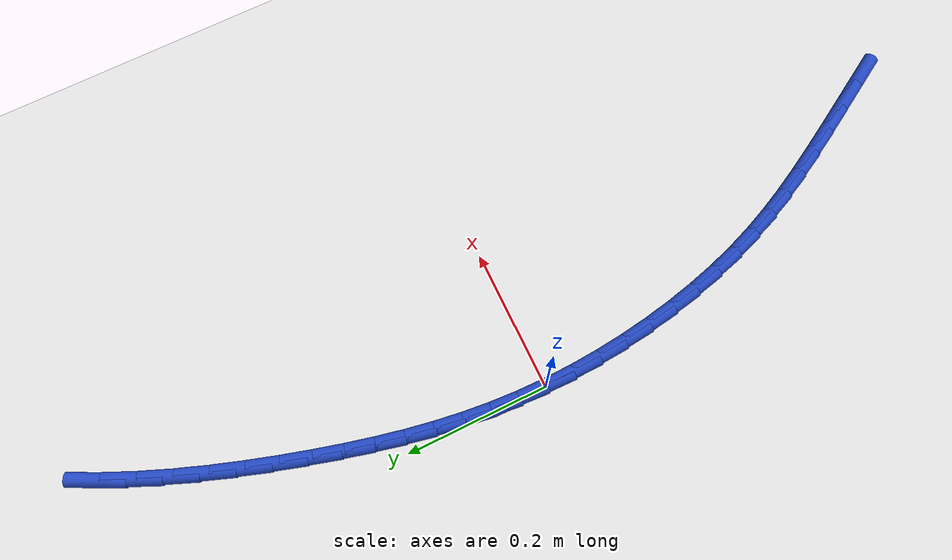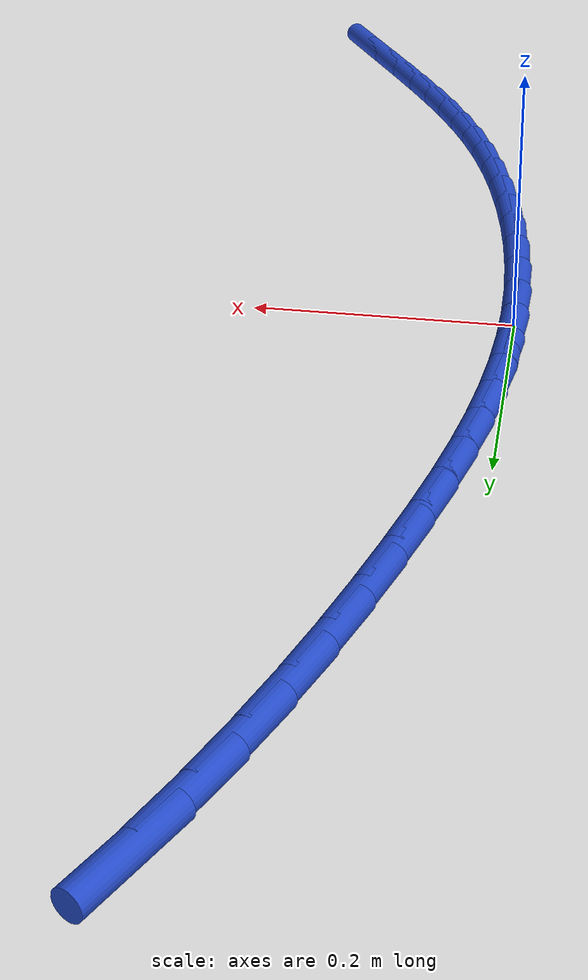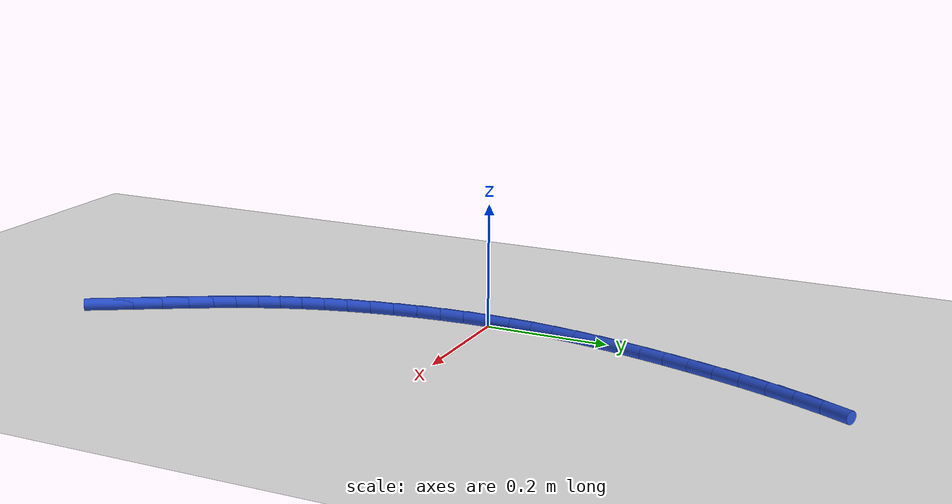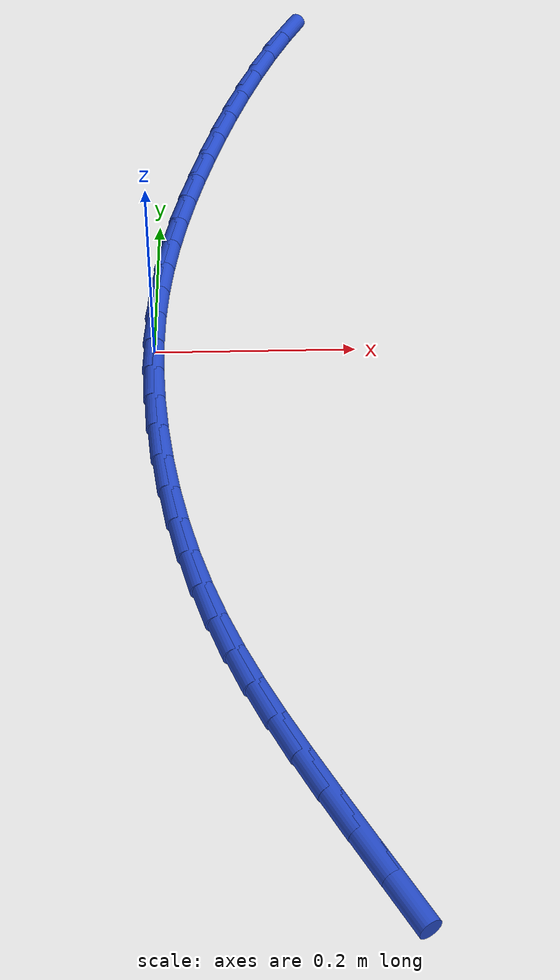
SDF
<sdf version="1.6">
 <world name="default">
  <model name="ground_plane">
   <static>1</static>
   <link name="link">
    <collision name="collision">
     <geometry><plane><normal>0 0 1</normal><size>100 100</size></plane></geometry>
     <surface><friction><ode><mu>100</mu><mu2>50</mu2></ode></friction></surface>
    </collision>
    <visual name="visual">
     <cast_shadows>0</cast_shadows>
     <geometry><plane><normal>0 0 1</normal><size>100 100</size></plane></geometry>
     <material>
      <script><uri>file://media/materials/scripts/gazebo.material</uri><name>Gazebo/WhiteGlow</name></script>
     </material>
    </visual>
   </link>
  </model>
  <model name="line">
   <link name="link_0">
    <pose>2.5153490401663703e-17 1.3877787807814457e-17 0.01 0 1.57 1.5471505784857835</pose>
    <collision name="collision">
     <geometry><cylinder><radius>0.01</radius><length>0.08</length></cylinder></geometry>
    </collision>
    <visual name="visual">
     <material>
      <script><name>Gazebo/Blue</name><uri>file://media/materials/scripts/gazebo.material</uri></script>
     </material>
     <geometry><cylinder><radius>0.01</radius><length>0.08</length></cylinder></geometry>
    </visual>
   </link>
   <link name="link_1">
    <pose>0.000923275118051304 0.03903885913328949 0.01 0 1.57 1.5042444246190936</pose>
    <collision name="collision">
     <geometry><cylinder><radius>0.01</radius><length>0.08</length></cylinder></geometry>
    </collision>
    <visual name="visual">
     <material>
      <script><name>Gazebo/Blue</name><uri>file://media/materials/scripts/gazebo.material</uri></script>
     </material>
     <geometry><cylinder><radius>0.01</radius><length>0.08</length></cylinder></geometry>
    </visual>
   </link>
   <link name="link_2">
    <pose>0.0034914588525333636 0.07757105584085955 0.01 0 1.57 1.4627454740002928</pose>
    <collision name="collision">
     <geometry><cylinder><radius>0.01</radius><length>0.08</length></cylinder></geometry>
    </collision>
    <visual name="visual">
     <material>
      <script><name>Gazebo/Blue</name><uri>file://media/materials/scripts/gazebo.material</uri></script>
     </material>
     <geometry><cylinder><radius>0.01</radius><length>0.08</length></cylinder></geometry>
    </visual>
   </link>
   <link name="link_3">
    <pose>0.007645529989852334 0.11586684149822181 0.01 0 1.57 1.4236548072683175</pose>
    <collision name="collision">
     <geometry><cylinder><radius>0.01</radius><length>0.08</length></cylinder></geometry>
    </collision>
    <visual name="visual">
     <material>
      <script><name>Gazebo/Blue</name><uri>file://media/materials/scripts/gazebo.material</uri></script>
     </material>
     <geometry><cylinder><radius>0.01</radius><length>0.08</length></cylinder></geometry>
    </visual>
   </link>
   <link name="link_4">
    <pose>0.013326467316414342 0.15419646748088806 0.01 0 1.57 1.3878259050040362</pose>
    <collision name="collision">
     <geometry><cylinder><radius>0.01</radius><length>0.08</length></cylinder></geometry>
    </collision>
    <visual name="visual">
     <material>
      <script><name>Gazebo/Blue</name><uri>file://media/materials/scripts/gazebo.material</uri></script>
     </material>
     <geometry><cylinder><radius>0.01</radius><length>0.08</length></cylinder></geometry>
    </visual>
   </link>
   <link name="link_5">
    <pose>0.02047524961862552 0.19283018516436995 0.01 0 1.57 1.3559049661492093</pose>
    <collision name="collision">
     <geometry><cylinder><radius>0.01</radius><length>0.08</length></cylinder></geometry>
    </collision>
    <visual name="visual">
     <material>
      <script><name>Gazebo/Blue</name><uri>file://media/materials/scripts/gazebo.material</uri></script>
     </material>
     <geometry><cylinder><radius>0.01</radius><length>0.08</length></cylinder></geometry>
    </visual>
   </link>
   <link name="link_6">
    <pose>0.029032855682891996 0.23203824592417915 0.01 0 1.57 1.3283042895135795</pose>
    <collision name="collision">
     <geometry><cylinder><radius>0.01</radius><length>0.08</length></cylinder></geometry>
    </collision>
    <visual name="visual">
     <material>
      <script><name>Gazebo/Blue</name><uri>file://media/materials/scripts/gazebo.material</uri></script>
     </material>
     <geometry><cylinder><radius>0.01</radius><length>0.08</length></cylinder></geometry>
    </visual>
   </link>
   <link name="link_7">
    <pose>0.038940264295619906 0.27209090113582746 0.01 0 1.57 1.305205933544033</pose>
    <collision name="collision">
     <geometry><cylinder><radius>0.01</radius><length>0.08</length></cylinder></geometry>
    </collision>
    <visual name="visual">
     <material>
      <script><name>Gazebo/Blue</name><uri>file://media/materials/scripts/gazebo.material</uri></script>
     </material>
     <geometry><cylinder><radius>0.01</radius><length>0.08</length></cylinder></geometry>
    </visual>
   </link>
   <link name="link_8">
    <pose>0.05013847081517312 0.3132582760831802 0.01 0 1.57 1.2851180001691027</pose>
    <collision name="collision">
     <geometry><cylinder><radius>0.01</radius><length>0.08</length></cylinder></geometry>
    </collision>
    <visual name="visual">
     <material>
      <script><name>Gazebo/Blue</name><uri>file://media/materials/scripts/gazebo.material</uri></script>
     </material>
     <geometry><cylinder><radius>0.01</radius><length>0.08</length></cylinder></geometry>
    </visual>
   </link>
   <link name="link_9">
    <pose>0.0625895263221571 0.3556502886251262 0.01 0 1.57 1.2634578270486687</pose>
    <collision name="collision">
     <geometry><cylinder><radius>0.01</radius><length>0.08</length></cylinder></geometry>
    </collision>
    <visual name="visual">
     <material>
      <script><name>Gazebo/Blue</name><uri>file://media/materials/scripts/gazebo.material</uri></script>
     </material>
     <geometry><cylinder><radius>0.01</radius><length>0.08</length></cylinder></geometry>
    </visual>
   </link>
   <link name="link_10">
    <pose>0.07631775347409259 0.3989030486517562 0.01 0 1.57 1.2390405952945032</pose>
    <collision name="collision">
     <geometry><cylinder><radius>0.01</radius><length>0.08</length></cylinder></geometry>
    </collision>
    <visual name="visual">
     <material>
      <script><name>Gazebo/Blue</name><uri>file://media/materials/scripts/gazebo.material</uri></script>
     </material>
     <geometry><cylinder><radius>0.01</radius><length>0.08</length></cylinder></geometry>
    </visual>
   </link>
   <link name="link_11">
    <pose>0.09135893180105331 0.4425654937382456 0.01 0 1.57 1.2113824903767378</pose>
    <collision name="collision">
     <geometry><cylinder><radius>0.01</radius><length>0.08</length></cylinder></geometry>
    </collision>
    <visual name="visual">
     <material>
      <script><name>Gazebo/Blue</name><uri>file://media/materials/scripts/gazebo.material</uri></script>
     </material>
     <geometry><cylinder><radius>0.01</radius><length>0.08</length></cylinder></geometry>
    </visual>
   </link>
   <link name="link_12">
    <pose>0.10774884083311295 0.48618656145977013 0.01 0 1.57 1.1798805964561458</pose>
    <collision name="collision">
     <geometry><cylinder><radius>0.01</radius><length>0.08</length></cylinder></geometry>
    </collision>
    <visual name="visual">
     <material>
      <script><name>Gazebo/Blue</name><uri>file://media/materials/scripts/gazebo.material</uri></script>
     </material>
     <geometry><cylinder><radius>0.01</radius><length>0.08</length></cylinder></geometry>
    </visual>
   </link>
   <link name="link_13">
    <pose>0.12552326010034534 0.5293151893915058 0.01 0 1.57 1.1437828212955772</pose>
    <collision name="collision">
     <geometry><cylinder><radius>0.01</radius><length>0.08</length></cylinder></geometry>
    </collision>
    <visual name="visual">
     <material>
      <script><name>Gazebo/Blue</name><uri>file://media/materials/scripts/gazebo.material</uri></script>
     </material>
     <geometry><cylinder><radius>0.01</radius><length>0.08</length></cylinder></geometry>
    </visual>
   </link>
   <link name="link_14">
    <pose>0.14471796913282417 0.5715003151086281 0.01 0 1.57 1.10215036287751</pose>
    <collision name="collision">
     <geometry><cylinder><radius>0.01</radius><length>0.08</length></cylinder></geometry>
    </collision>
    <visual name="visual">
     <material>
      <script><name>Gazebo/Blue</name><uri>file://media/materials/scripts/gazebo.material</uri></script>
     </material>
     <geometry><cylinder><radius>0.01</radius><length>0.08</length></cylinder></geometry>
    </visual>
   </link>
   <link name="link_184">
    <pose>0.19600436513653038 -0.5963293135552582 0.01 0 1.57 -1.038956108753962</pose>
    <collision name="collision">
     <geometry><cylinder><radius>0.01</radius><length>0.08</length></cylinder></geometry>
    </collision>
    <visual name="visual">
     <material>
      <script><name>Gazebo/Blue</name><uri>file://media/materials/scripts/gazebo.material</uri></script>
     </material>
     <geometry><cylinder><radius>0.01</radius><length>0.08</length></cylinder></geometry>
    </visual>
   </link>
   <link name="link_185">
    <pose>0.17200694586978588 -0.5555445413322857 0.01 0 1.57 -1.0411550981613575</pose>
    <collision name="collision">
     <geometry><cylinder><radius>0.01</radius><length>0.08</length></cylinder></geometry>
    </collision>
    <visual name="visual">
     <material>
      <script><name>Gazebo/Blue</name><uri>file://media/materials/scripts/gazebo.material</uri></script>
     </material>
     <geometry><cylinder><radius>0.01</radius><length>0.08</length></cylinder></geometry>
    </visual>
   </link>
   <link name="link_186">
    <pose>0.14976992044660103 -0.5175607878668987 0.01 0 1.57 -1.0503273284487868</pose>
    <collision name="collision">
     <geometry><cylinder><radius>0.01</radius><length>0.08</length></cylinder></geometry>
    </collision>
    <visual name="visual">
     <material>
      <script><name>Gazebo/Blue</name><uri>file://media/materials/scripts/gazebo.material</uri></script>
     </material>
     <geometry><cylinder><radius>0.01</radius><length>0.08</length></cylinder></geometry>
    </visual>
   </link>
   <link name="link_187">
    <pose>0.1292373922704128 -0.4817389550107698 0.01 0 1.57 -1.0675336384003165</pose>
    <collision name="collision">
     <geometry><cylinder><radius>0.01</radius><length>0.08</length></cylinder></geometry>
    </collision>
    <visual name="visual">
     <material>
      <script><name>Gazebo/Blue</name><uri>file://media/materials/scripts/gazebo.material</uri></script>
     </material>
     <geometry><cylinder><radius>0.01</radius><length>0.08</length></cylinder></geometry>
    </visual>
   </link>
   <link name="link_188">
    <pose>0.11035307218802413 -0.44743791007414896 0.01 0 1.57 -1.0933217024455284</pose>
    <collision name="collision">
     <geometry><cylinder><radius>0.01</radius><length>0.08</length></cylinder></geometry>
    </collision>
    <visual name="visual">
     <material>
      <script><name>Gazebo/Blue</name><uri>file://media/materials/scripts/gazebo.material</uri></script>
     </material>
     <geometry><cylinder><radius>0.01</radius><length>0.08</length></cylinder></geometry>
    </visual>
   </link>
   <link name="link_189">
    <pose>0.09306067104623804 -0.41401652036728626 0.01 0 1.57 -1.1274731657777017</pose>
    <collision name="collision">
     <geometry><cylinder><radius>0.01</radius><length>0.08</length></cylinder></geometry>
    </collision>
    <visual name="visual">
     <material>
      <script><name>Gazebo/Blue</name><uri>file://media/materials/scripts/gazebo.material</uri></script>
     </material>
     <geometry><cylinder><radius>0.01</radius><length>0.08</length></cylinder></geometry>
    </visual>
   </link>
   <link name="link_190">
    <pose>0.07730389969185751 -0.3808336532004318 0.01 0 1.57 -1.1688348205141468</pose>
    <collision name="collision">
     <geometry><cylinder><radius>0.01</radius><length>0.08</length></cylinder></geometry>
    </collision>
    <visual name="visual">
     <material>
      <script><name>Gazebo/Blue</name><uri>file://media/materials/scripts/gazebo.material</uri></script>
     </material>
     <geometry><cylinder><radius>0.01</radius><length>0.08</length></cylinder></geometry>
    </visual>
   </link>
   <link name="link_191">
    <pose>0.06302646897168551 -0.3472481758838355 0.01 0 1.57 -1.215360995544181</pose>
    <collision name="collision">
     <geometry><cylinder><radius>0.01</radius><length>0.08</length></cylinder></geometry>
    </collision>
    <visual name="visual">
     <material>
      <script><name>Gazebo/Blue</name><uri>file://media/materials/scripts/gazebo.material</uri></script>
     </material>
     <geometry><cylinder><radius>0.01</radius><length>0.08</length></cylinder></geometry>
    </visual>
   </link>
   <link name="link_192">
    <pose>0.05017208973252535 -0.3126189557277482 0.01 0 1.57 -1.263796551486426</pose>
    <collision name="collision">
     <geometry><cylinder><radius>0.01</radius><length>0.08</length></cylinder></geometry>
    </collision>
    <visual name="visual">
     <material>
      <script><name>Gazebo/Blue</name><uri>file://media/materials/scripts/gazebo.material</uri></script>
     </material>
     <geometry><cylinder><radius>0.01</radius><length>0.08</length></cylinder></geometry>
    </visual>
   </link>
   <link name="link_193">
    <pose>0.038696521939964944 -0.2764210064575996 0.01 0 1.57 -1.309382491699234</pose>
    <collision name="collision">
     <geometry><cylinder><radius>0.01</radius><length>0.08</length></cylinder></geometry>
    </collision>
    <visual name="visual">
     <material>
      <script><name>Gazebo/Blue</name><uri>file://media/materials/scripts/gazebo.material</uri></script>
     </material>
     <geometry><cylinder><radius>0.01</radius><length>0.08</length></cylinder></geometry>
    </visual>
   </link>
   <link name="link_194">
    <pose>0.028621016174396125 -0.23876063278970264 0.01 0 1.57 -1.351902634327876</pose>
    <collision name="collision">
     <geometry><cylinder><radius>0.01</radius><length>0.08</length></cylinder></geometry>
    </collision>
    <visual name="visual">
     <material>
      <script><name>Gazebo/Blue</name><uri>file://media/materials/scripts/gazebo.material</uri></script>
     </material>
     <geometry><cylinder><radius>0.01</radius><length>0.08</length></cylinder></geometry>
    </visual>
   </link>
   <link name="link_195">
    <pose>0.019988967183148597 -0.19995759617964073 0.01 0 1.57 -1.3923968415024097</pose>
    <collision name="collision">
     <geometry><cylinder><radius>0.01</radius><length>0.08</length></cylinder></geometry>
    </collision>
    <visual name="visual">
     <material>
      <script><name>Gazebo/Blue</name><uri>file://media/materials/scripts/gazebo.material</uri></script>
     </material>
     <geometry><cylinder><radius>0.01</radius><length>0.08</length></cylinder></geometry>
    </visual>
   </link>
   <link name="link_196">
    <pose>0.012843787142172927 -0.16033182608464647 0.01 0 1.57 -1.4317761885193085</pose>
    <collision name="collision">
     <geometry><cylinder><radius>0.01</radius><length>0.08</length></cylinder></geometry>
    </collision>
    <visual name="visual">
     <material>
      <script><name>Gazebo/Blue</name><uri>file://media/materials/scripts/gazebo.material</uri></script>
     </material>
     <geometry><cylinder><radius>0.01</radius><length>0.08</length></cylinder></geometry>
    </visual>
   </link>
   <link name="link_197">
    <pose>0.00722888822741968 -0.12020325196195257 0.01 0 1.57 -1.4708805761237593</pose>
    <collision name="collision">
     <geometry><cylinder><radius>0.01</radius><length>0.08</length></cylinder></geometry>
    </collision>
    <visual name="visual">
     <material>
      <script><name>Gazebo/Blue</name><uri>file://media/materials/scripts/gazebo.material</uri></script>
     </material>
     <geometry><cylinder><radius>0.01</radius><length>0.08</length></cylinder></geometry>
    </visual>
   </link>
   <link name="link_198">
    <pose>0.003187682614839411 -0.07989180326879176 0.01 0 1.57 -1.5105299633470721</pose>
    <collision name="collision">
     <geometry><cylinder><radius>0.01</radius><length>0.08</length></cylinder></geometry>
    </collision>
    <visual name="visual">
     <material>
      <script><name>Gazebo/Blue</name><uri>file://media/materials/scripts/gazebo.material</uri></script>
     </material>
     <geometry><cylinder><radius>0.01</radius><length>0.08</length></cylinder></geometry>
    </visual>
   </link>
   <link name="link_199">
    <pose>0.0007635824803826734 -0.03971740946239672 0.01 0 1.57 -1.5515733101307105</pose>
    <collision name="collision">
     <geometry><cylinder><radius>0.01</radius><length>0.08</length></cylinder></geometry>
    </collision>
    <visual name="visual">
     <material>
      <script><name>Gazebo/Blue</name><uri>file://media/materials/scripts/gazebo.material</uri></script>
     </material>
     <geometry><cylinder><radius>0.01</radius><length>0.08</length></cylinder></geometry>
    </visual>
   </link>
   <link name="link_200">
    <pose>3.469446951953614e-17 -9.71445146547012e-17 0.01 0 1.57 1.546652704261583</pose>
    <collision name="collision">
     <geometry><cylinder><radius>0.01</radius><length>0.08</length></cylinder></geometry>
    </collision>
    <visual name="visual">
     <material>
      <script><name>Gazebo/Blue</name><uri>file://media/materials/scripts/gazebo.material</uri></script>
     </material>
     <geometry><cylinder><radius>0.01</radius><length>0.08</length></cylinder></geometry>
    </visual>
   </link>
   <link name="link_201">
    <pose>0.0009403473496420872 0.03894049566116622 0.01 0 1.57 1.5466527042615827</pose>
    <collision name="collision">
     <geometry><cylinder><radius>0.01</radius><length>0.08</length></cylinder></geometry>
    </collision>
    <visual name="visual">
     <material>
      <script><name>Gazebo/Blue</name><uri>file://media/materials/scripts/gazebo.material</uri></script>
     </material>
     <geometry><cylinder><radius>0.01</radius><length>0.08</length></cylinder></geometry>
    </visual>
   </link>
  </model>
 </world>
</sdf>
